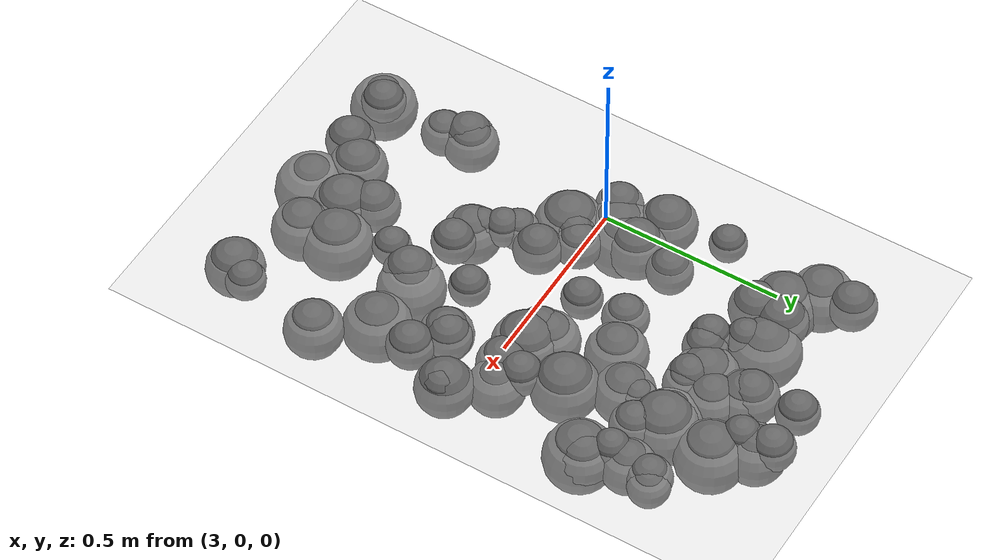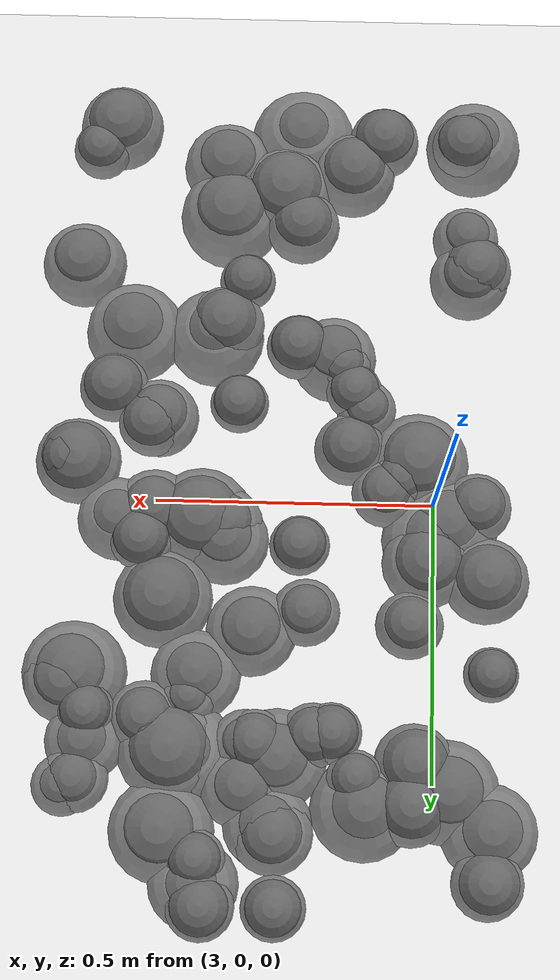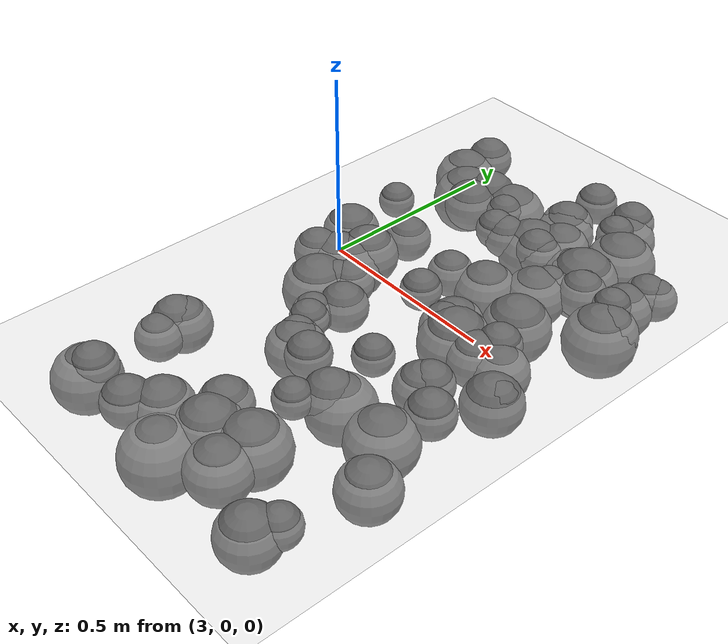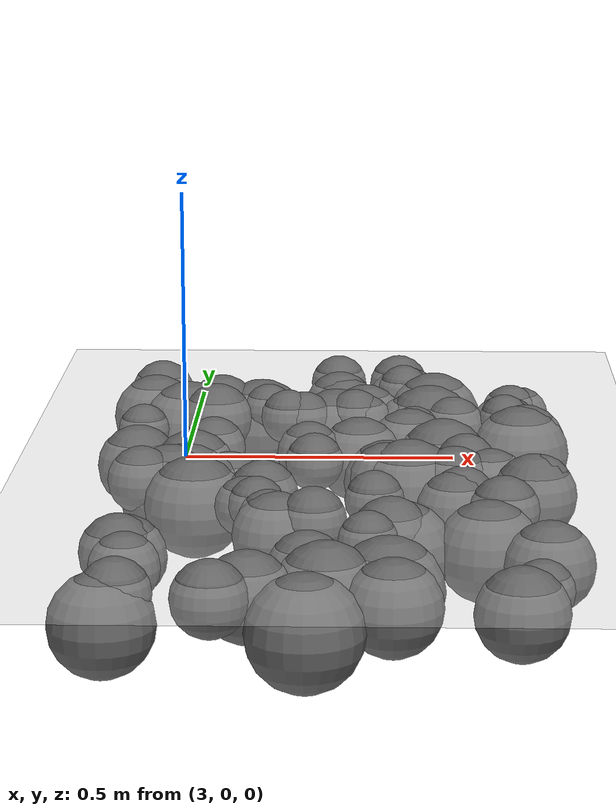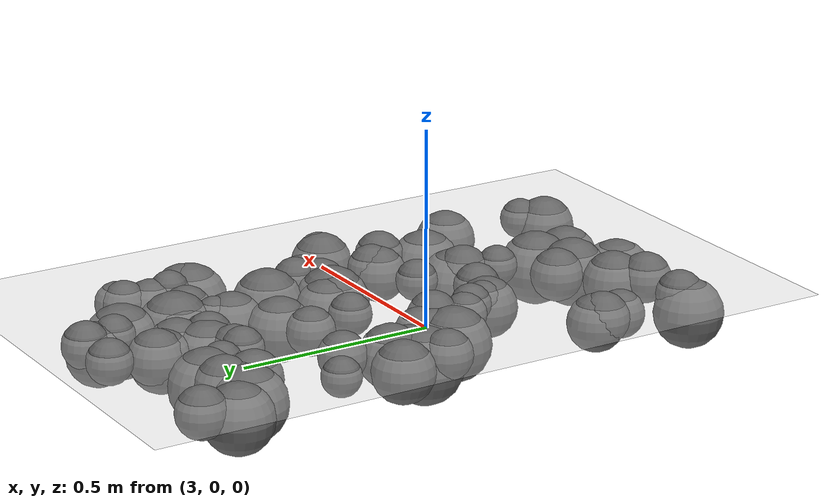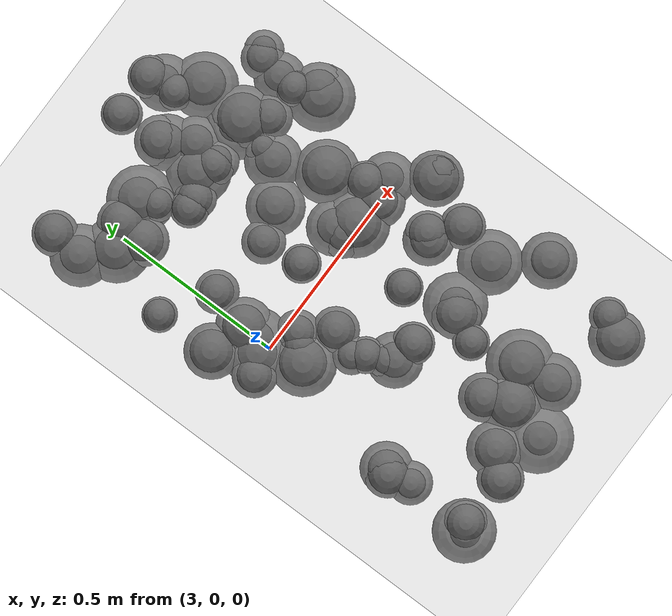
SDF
<sdf version="1.6">
 <world name="high_freq_world">
  <model name="ground_plane">
   <static>true</static>
   <link name="link">
    <collision name="collision">
     <geometry><plane><normal>0 0 1</normal><size>100 100</size></plane></geometry>
     <surface><friction><ode><mu>100.0</mu><mu2>100.0</mu2></ode></friction></surface>
    </collision>
    <visual name="visual">
     <geometry><plane><normal>0 0 1</normal><size>100 100</size></plane></geometry>
     <material><ambient>0.8 0.8 0.8 1</ambient><diffuse>0.8 0.8 0.8 1</diffuse></material>
    </visual>
   </link>
  </model>
  <model name="bump_1">
   <static>true</static>
   <pose>3.433 0.444 -0.080 0 0 0</pose>
   <link name="link">
    <collision name="collision">
     <geometry><sphere><radius>0.091</radius></sphere></geometry>
     <surface><friction><ode><mu>100.0</mu><mu2>100.0</mu2></ode></friction></surface>
    </collision>
    <visual name="visual">
     <geometry><sphere><radius>0.091</radius></sphere></geometry>
     <material><ambient>0.3 0.3 0.3 1</ambient><diffuse>0.4 0.4 0.4 1</diffuse></material>
    </visual>
   </link>
  </model>
  <model name="bump_16">
   <static>true</static>
   <pose>3.419 0.019 -0.067 0 0 0</pose>
   <link name="link">
    <collision name="collision">
     <geometry><sphere><radius>0.096</radius></sphere></geometry>
     <surface><friction><ode><mu>100.0</mu><mu2>100.0</mu2></ode></friction></surface>
    </collision>
    <visual name="visual">
     <geometry><sphere><radius>0.096</radius></sphere></geometry>
     <material><ambient>0.3 0.3 0.3 1</ambient><diffuse>0.4 0.4 0.4 1</diffuse></material>
    </visual>
   </link>
  </model>
  <model name="bump_22">
   <static>true</static>
   <pose>3.116 0.536 -0.079 0 0 0</pose>
   <link name="link">
    <collision name="collision">
     <geometry><sphere><radius>0.096</radius></sphere></geometry>
     <surface><friction><ode><mu>100.0</mu><mu2>100.0</mu2></ode></friction></surface>
    </collision>
    <visual name="visual">
     <geometry><sphere><radius>0.096</radius></sphere></geometry>
     <material><ambient>0.3 0.3 0.3 1</ambient><diffuse>0.4 0.4 0.4 1</diffuse></material>
    </visual>
   </link>
  </model>
  <model name="bump_28">
   <static>true</static>
   <pose>3.248 -0.306 -0.030 0 0 0</pose>
   <link name="link">
    <collision name="collision">
     <geometry><sphere><radius>0.060</radius></sphere></geometry>
     <surface><friction><ode><mu>100.0</mu><mu2>100.0</mu2></ode></friction></surface>
    </collision>
    <visual name="visual">
     <geometry><sphere><radius>0.060</radius></sphere></geometry>
     <material><ambient>0.3 0.3 0.3 1</ambient><diffuse>0.4 0.4 0.4 1</diffuse></material>
    </visual>
   </link>
  </model>
  <model name="bump_36">
   <static>true</static>
   <pose>3.615 0.429 -0.061 0 0 0</pose>
   <link name="link">
    <collision name="collision">
     <geometry><sphere><radius>0.073</radius></sphere></geometry>
     <surface><friction><ode><mu>100.0</mu><mu2>100.0</mu2></ode></friction></surface>
    </collision>
    <visual name="visual">
     <geometry><sphere><radius>0.073</radius></sphere></geometry>
     <material><ambient>0.3 0.3 0.3 1</ambient><diffuse>0.4 0.4 0.4 1</diffuse></material>
    </visual>
   </link>
  </model>
  <model name="bump_37">
   <static>true</static>
   <pose>3.094 -0.721 -0.038 0 0 0</pose>
   <link name="link">
    <collision name="collision">
     <geometry><sphere><radius>0.066</radius></sphere></geometry>
     <surface><friction><ode><mu>100.0</mu><mu2>100.0</mu2></ode></friction></surface>
    </collision>
    <visual name="visual">
     <geometry><sphere><radius>0.066</radius></sphere></geometry>
     <material><ambient>0.3 0.3 0.3 1</ambient><diffuse>0.4 0.4 0.4 1</diffuse></material>
    </visual>
   </link>
  </model>
  <model name="bump_45">
   <static>true</static>
   <pose>2.967 0.505 -0.076 0 0 0</pose>
   <link name="link">
    <collision name="collision">
     <geometry><sphere><radius>0.095</radius></sphere></geometry>
     <surface><friction><ode><mu>100.0</mu><mu2>100.0</mu2></ode></friction></surface>
    </collision>
    <visual name="visual">
     <geometry><sphere><radius>0.095</radius></sphere></geometry>
     <material><ambient>0.3 0.3 0.3 1</ambient><diffuse>0.4 0.4 0.4 1</diffuse></material>
    </visual>
   </link>
  </model>
  <model name="bump_48">
   <static>true</static>
   <pose>3.526 0.065 -0.029 0 0 0</pose>
   <link name="link">
    <collision name="collision">
     <geometry><sphere><radius>0.058</radius></sphere></geometry>
     <surface><friction><ode><mu>100.0</mu><mu2>100.0</mu2></ode></friction></surface>
    </collision>
    <visual name="visual">
     <geometry><sphere><radius>0.058</radius></sphere></geometry>
     <material><ambient>0.3 0.3 0.3 1</ambient><diffuse>0.4 0.4 0.4 1</diffuse></material>
    </visual>
   </link>
  </model>
  <model name="bump_57">
   <static>true</static>
   <pose>3.038 0.211 -0.041 0 0 0</pose>
   <link name="link">
    <collision name="collision">
     <geometry><sphere><radius>0.062</radius></sphere></geometry>
     <surface><friction><ode><mu>100.0</mu><mu2>100.0</mu2></ode></friction></surface>
    </collision>
    <visual name="visual">
     <geometry><sphere><radius>0.062</radius></sphere></geometry>
     <material><ambient>0.3 0.3 0.3 1</ambient><diffuse>0.4 0.4 0.4 1</diffuse></material>
    </visual>
   </link>
  </model>
  <model name="bump_61">
   <static>true</static>
   <pose>3.629 0.498 -0.044 0 0 0</pose>
   <link name="link">
    <collision name="collision">
     <geometry><sphere><radius>0.061</radius></sphere></geometry>
     <surface><friction><ode><mu>100.0</mu><mu2>100.0</mu2></ode></friction></surface>
    </collision>
    <visual name="visual">
     <geometry><sphere><radius>0.061</radius></sphere></geometry>
     <material><ambient>0.3 0.3 0.3 1</ambient><diffuse>0.4 0.4 0.4 1</diffuse></material>
    </visual>
   </link>
  </model>
  <model name="bump_64">
   <static>true</static>
   <pose>3.248 -0.739 -0.089 0 0 0</pose>
   <link name="link">
    <collision name="collision">
     <geometry><sphere><radius>0.100</radius></sphere></geometry>
     <surface><friction><ode><mu>100.0</mu><mu2>100.0</mu2></ode></friction></surface>
    </collision>
    <visual name="visual">
     <geometry><sphere><radius>0.100</radius></sphere></geometry>
     <material><ambient>0.3 0.3 0.3 1</ambient><diffuse>0.4 0.4 0.4 1</diffuse></material>
    </visual>
   </link>
  </model>
  <model name="bump_75">
   <static>true</static>
   <pose>3.485 0.169 -0.061 0 0 0</pose>
   <link name="link">
    <collision name="collision">
     <geometry><sphere><radius>0.091</radius></sphere></geometry>
     <surface><friction><ode><mu>100.0</mu><mu2>100.0</mu2></ode></friction></surface>
    </collision>
    <visual name="visual">
     <geometry><sphere><radius>0.091</radius></sphere></geometry>
     <material><ambient>0.3 0.3 0.3 1</ambient><diffuse>0.4 0.4 0.4 1</diffuse></material>
    </visual>
   </link>
  </model>
  <model name="bump_82">
   <static>true</static>
   <pose>3.311 0.427 -0.035 0 0 0</pose>
   <link name="link">
    <collision name="collision">
     <geometry><sphere><radius>0.059</radius></sphere></geometry>
     <surface><friction><ode><mu>100.0</mu><mu2>100.0</mu2></ode></friction></surface>
    </collision>
    <visual name="visual">
     <geometry><sphere><radius>0.059</radius></sphere></geometry>
     <material><ambient>0.3 0.3 0.3 1</ambient><diffuse>0.4 0.4 0.4 1</diffuse></material>
    </visual>
   </link>
  </model>
  <model name="bump_86">
   <static>true</static>
   <pose>3.588 -0.222 -0.036 0 0 0</pose>
   <link name="link">
    <collision name="collision">
     <geometry><sphere><radius>0.064</radius></sphere></geometry>
     <surface><friction><ode><mu>100.0</mu><mu2>100.0</mu2></ode></friction></surface>
    </collision>
    <visual name="visual">
     <geometry><sphere><radius>0.064</radius></sphere></geometry>
     <material><ambient>0.3 0.3 0.3 1</ambient><diffuse>0.4 0.4 0.4 1</diffuse></material>
    </visual>
   </link>
  </model>
  <model name="bump_92">
   <static>true</static>
   <pose>3.084 -0.033 -0.044 0 0 0</pose>
   <link name="link">
    <collision name="collision">
     <geometry><sphere><radius>0.062</radius></sphere></geometry>
     <surface><friction><ode><mu>100.0</mu><mu2>100.0</mu2></ode></friction></surface>
    </collision>
    <visual name="visual">
     <geometry><sphere><radius>0.062</radius></sphere></geometry>
     <material><ambient>0.3 0.3 0.3 1</ambient><diffuse>0.4 0.4 0.4 1</diffuse></material>
    </visual>
   </link>
  </model>
  <model name="bump_102">
   <static>true</static>
   <pose>3.500 0.400 -0.037 0 0 0</pose>
   <link name="link">
    <collision name="collision">
     <geometry><sphere><radius>0.053</radius></sphere></geometry>
     <surface><friction><ode><mu>100.0</mu><mu2>100.0</mu2></ode></friction></surface>
    </collision>
    <visual name="visual">
     <geometry><sphere><radius>0.053</radius></sphere></geometry>
     <material><ambient>0.3 0.3 0.3 1</ambient><diffuse>0.4 0.4 0.4 1</diffuse></material>
    </visual>
   </link>
  </model>
  <model name="bump_103">
   <static>true</static>
   <pose>3.515 -0.155 -0.036 0 0 0</pose>
   <link name="link">
    <collision name="collision">
     <geometry><sphere><radius>0.062</radius></sphere></geometry>
     <surface><friction><ode><mu>100.0</mu><mu2>100.0</mu2></ode></friction></surface>
    </collision>
    <visual name="visual">
     <geometry><sphere><radius>0.062</radius></sphere></geometry>
     <material><ambient>0.3 0.3 0.3 1</ambient><diffuse>0.4 0.4 0.4 1</diffuse></material>
    </visual>
   </link>
  </model>
  <model name="bump_105">
   <static>true</static>
   <pose>3.400 0.715 -0.033 0 0 0</pose>
   <link name="link">
    <collision name="collision">
     <geometry><sphere><radius>0.061</radius></sphere></geometry>
     <surface><friction><ode><mu>100.0</mu><mu2>100.0</mu2></ode></friction></surface>
    </collision>
    <visual name="visual">
     <geometry><sphere><radius>0.061</radius></sphere></geometry>
     <material><ambient>0.3 0.3 0.3 1</ambient><diffuse>0.4 0.4 0.4 1</diffuse></material>
    </visual>
   </link>
  </model>
  <model name="bump_106">
   <static>true</static>
   <pose>2.917 -0.009 -0.043 0 0 0</pose>
   <link name="link">
    <collision name="collision">
     <geometry><sphere><radius>0.064</radius></sphere></geometry>
     <surface><friction><ode><mu>100.0</mu><mu2>100.0</mu2></ode></friction></surface>
    </collision>
    <visual name="visual">
     <geometry><sphere><radius>0.064</radius></sphere></geometry>
     <material><ambient>0.3 0.3 0.3 1</ambient><diffuse>0.4 0.4 0.4 1</diffuse></material>
    </visual>
   </link>
  </model>
  <model name="bump_118">
   <static>true</static>
   <pose>3.656 -0.469 -0.060 0 0 0</pose>
   <link name="link">
    <collision name="collision">
     <geometry><sphere><radius>0.079</radius></sphere></geometry>
     <surface><friction><ode><mu>100.0</mu><mu2>100.0</mu2></ode></friction></surface>
    </collision>
    <visual name="visual">
     <geometry><sphere><radius>0.079</radius></sphere></geometry>
     <material><ambient>0.3 0.3 0.3 1</ambient><diffuse>0.4 0.4 0.4 1</diffuse></material>
    </visual>
   </link>
  </model>
  <model name="bump_119">
   <static>true</static>
   <pose>3.641 0.306 -0.075 0 0 0</pose>
   <link name="link">
    <collision name="collision">
     <geometry><sphere><radius>0.096</radius></sphere></geometry>
     <surface><friction><ode><mu>100.0</mu><mu2>100.0</mu2></ode></friction></surface>
    </collision>
    <visual name="visual">
     <geometry><sphere><radius>0.096</radius></sphere></geometry>
     <material><ambient>0.3 0.3 0.3 1</ambient><diffuse>0.4 0.4 0.4 1</diffuse></material>
    </visual>
   </link>
  </model>
  <model name="bump_121">
   <static>true</static>
   <pose>3.121 -0.190 -0.040 0 0 0</pose>
   <link name="link">
    <collision name="collision">
     <geometry><sphere><radius>0.055</radius></sphere></geometry>
     <surface><friction><ode><mu>100.0</mu><mu2>100.0</mu2></ode></friction></surface>
    </collision>
    <visual name="visual">
     <geometry><sphere><radius>0.055</radius></sphere></geometry>
     <material><ambient>0.3 0.3 0.3 1</ambient><diffuse>0.4 0.4 0.4 1</diffuse></material>
    </visual>
   </link>
  </model>
  <model name="bump_122">
   <static>true</static>
   <pose>3.612 0.379 -0.024 0 0 0</pose>
   <link name="link">
    <collision name="collision">
     <geometry><sphere><radius>0.051</radius></sphere></geometry>
     <surface><friction><ode><mu>100.0</mu><mu2>100.0</mu2></ode></friction></surface>
    </collision>
    <visual name="visual">
     <geometry><sphere><radius>0.051</radius></sphere></geometry>
     <material><ambient>0.3 0.3 0.3 1</ambient><diffuse>0.4 0.4 0.4 1</diffuse></material>
    </visual>
   </link>
  </model>
  <model name="bump_143">
   <static>true</static>
   <pose>3.650 0.509 -0.046 0 0 0</pose>
   <link name="link">
    <collision name="collision">
     <geometry><sphere><radius>0.056</radius></sphere></geometry>
     <surface><friction><ode><mu>100.0</mu><mu2>100.0</mu2></ode></friction></surface>
    </collision>
    <visual name="visual">
     <geometry><sphere><radius>0.056</radius></sphere></geometry>
     <material><ambient>0.3 0.3 0.3 1</ambient><diffuse>0.4 0.4 0.4 1</diffuse></material>
    </visual>
   </link>
  </model>
  <model name="bump_145">
   <static>true</static>
   <pose>3.328 0.427 -0.046 0 0 0</pose>
   <link name="link">
    <collision name="collision">
     <geometry><sphere><radius>0.060</radius></sphere></geometry>
     <surface><friction><ode><mu>100.0</mu><mu2>100.0</mu2></ode></friction></surface>
    </collision>
    <visual name="visual">
     <geometry><sphere><radius>0.060</radius></sphere></geometry>
     <material><ambient>0.3 0.3 0.3 1</ambient><diffuse>0.4 0.4 0.4 1</diffuse></material>
    </visual>
   </link>
  </model>
  <model name="bump_148">
   <static>true</static>
   <pose>3.405 -0.336 -0.079 0 0 0</pose>
   <link name="link">
    <collision name="collision">
     <geometry><sphere><radius>0.091</radius></sphere></geometry>
     <surface><friction><ode><mu>100.0</mu><mu2>100.0</mu2></ode></friction></surface>
    </collision>
    <visual name="visual">
     <geometry><sphere><radius>0.091</radius></sphere></geometry>
     <material><ambient>0.3 0.3 0.3 1</ambient><diffuse>0.4 0.4 0.4 1</diffuse></material>
    </visual>
   </link>
  </model>
  <model name="bump_151">
   <static>true</static>
   <pose>3.382 -0.576 -0.073 0 0 0</pose>
   <link name="link">
    <collision name="collision">
     <geometry><sphere><radius>0.096</radius></sphere></geometry>
     <surface><friction><ode><mu>100.0</mu><mu2>100.0</mu2></ode></friction></surface>
    </collision>
    <visual name="visual">
     <geometry><sphere><radius>0.096</radius></sphere></geometry>
     <material><ambient>0.3 0.3 0.3 1</ambient><diffuse>0.4 0.4 0.4 1</diffuse></material>
    </visual>
   </link>
  </model>
  <model name="bump_152">
   <static>true</static>
   <pose>2.937 -0.530 -0.048 0 0 0</pose>
   <link name="link">
    <collision name="collision">
     <geometry><sphere><radius>0.062</radius></sphere></geometry>
     <surface><friction><ode><mu>100.0</mu><mu2>100.0</mu2></ode></friction></surface>
    </collision>
    <visual name="visual">
     <geometry><sphere><radius>0.062</radius></sphere></geometry>
     <material><ambient>0.3 0.3 0.3 1</ambient><diffuse>0.4 0.4 0.4 1</diffuse></material>
    </visual>
   </link>
  </model>
  <model name="bump_164">
   <static>true</static>
   <pose>3.278 -0.620 -0.061 0 0 0</pose>
   <link name="link">
    <collision name="collision">
     <geometry><sphere><radius>0.089</radius></sphere></geometry>
     <surface><friction><ode><mu>100.0</mu><mu2>100.0</mu2></ode></friction></surface>
    </collision>
    <visual name="visual">
     <geometry><sphere><radius>0.089</radius></sphere></geometry>
     <material><ambient>0.3 0.3 0.3 1</ambient><diffuse>0.4 0.4 0.4 1</diffuse></material>
    </visual>
   </link>
  </model>
  <model name="bump_170">
   <static>true</static>
   <pose>3.376 0.030 -0.051 0 0 0</pose>
   <link name="link">
    <collision name="collision">
     <geometry><sphere><radius>0.070</radius></sphere></geometry>
     <surface><friction><ode><mu>100.0</mu><mu2>100.0</mu2></ode></friction></surface>
    </collision>
    <visual name="visual">
     <geometry><sphere><radius>0.070</radius></sphere></geometry>
     <material><ambient>0.3 0.3 0.3 1</ambient><diffuse>0.4 0.4 0.4 1</diffuse></material>
    </visual>
   </link>
  </model>
  <model name="bump_179">
   <static>true</static>
   <pose>3.385 -0.352 -0.046 0 0 0</pose>
   <link name="link">
    <collision name="collision">
     <geometry><sphere><radius>0.072</radius></sphere></geometry>
     <surface><friction><ode><mu>100.0</mu><mu2>100.0</mu2></ode></friction></surface>
    </collision>
    <visual name="visual">
     <geometry><sphere><radius>0.072</radius></sphere></geometry>
     <material><ambient>0.3 0.3 0.3 1</ambient><diffuse>0.4 0.4 0.4 1</diffuse></material>
    </visual>
   </link>
  </model>
  <model name="bump_183">
   <static>true</static>
   <pose>3.414 0.676 -0.069 0 0 0</pose>
   <link name="link">
    <collision name="collision">
     <geometry><sphere><radius>0.081</radius></sphere></geometry>
     <surface><friction><ode><mu>100.0</mu><mu2>100.0</mu2></ode></friction></surface>
    </collision>
    <visual name="visual">
     <geometry><sphere><radius>0.081</radius></sphere></geometry>
     <material><ambient>0.3 0.3 0.3 1</ambient><diffuse>0.4 0.4 0.4 1</diffuse></material>
    </visual>
   </link>
  </model>
  <model name="bump_186">
   <static>true</static>
   <pose>3.000 0.047 -0.076 0 0 0</pose>
   <link name="link">
    <collision name="collision">
     <geometry><sphere><radius>0.089</radius></sphere></geometry>
     <surface><friction><ode><mu>100.0</mu><mu2>100.0</mu2></ode></friction></surface>
    </collision>
    <visual name="visual">
     <geometry><sphere><radius>0.089</radius></sphere></geometry>
     <material><ambient>0.3 0.3 0.3 1</ambient><diffuse>0.4 0.4 0.4 1</diffuse></material>
    </visual>
   </link>
  </model>
  <model name="bump_204">
   <static>true</static>
   <pose>3.596 -0.746 -0.052 0 0 0</pose>
   <link name="link">
    <collision name="collision">
     <geometry><sphere><radius>0.079</radius></sphere></geometry>
     <surface><friction><ode><mu>100.0</mu><mu2>100.0</mu2></ode></friction></surface>
    </collision>
    <visual name="visual">
     <geometry><sphere><radius>0.079</radius></sphere></geometry>
     <material><ambient>0.3 0.3 0.3 1</ambient><diffuse>0.4 0.4 0.4 1</diffuse></material>
    </visual>
   </link>
  </model>
  <model name="bump_205">
   <static>true</static>
   <pose>3.007 0.094 -0.057 0 0 0</pose>
   <link name="link">
    <collision name="collision">
     <geometry><sphere><radius>0.082</radius></sphere></geometry>
     <surface><friction><ode><mu>100.0</mu><mu2>100.0</mu2></ode></friction></surface>
    </collision>
    <visual name="visual">
     <geometry><sphere><radius>0.082</radius></sphere></geometry>
     <material><ambient>0.3 0.3 0.3 1</ambient><diffuse>0.4 0.4 0.4 1</diffuse></material>
    </visual>
   </link>
  </model>
  <model name="bump_213">
   <static>true</static>
   <pose>3.239 0.071 -0.028 0 0 0</pose>
   <link name="link">
    <collision name="collision">
     <geometry><sphere><radius>0.055</radius></sphere></geometry>
     <surface><friction><ode><mu>100.0</mu><mu2>100.0</mu2></ode></friction></surface>
    </collision>
    <visual name="visual">
     <geometry><sphere><radius>0.055</radius></sphere></geometry>
     <material><ambient>0.3 0.3 0.3 1</ambient><diffuse>0.4 0.4 0.4 1</diffuse></material>
    </visual>
   </link>
  </model>
  <model name="bump_218">
   <static>true</static>
   <pose>2.920 -0.465 -0.042 0 0 0</pose>
   <link name="link">
    <collision name="collision">
     <geometry><sphere><radius>0.068</radius></sphere></geometry>
     <surface><friction><ode><mu>100.0</mu><mu2>100.0</mu2></ode></friction></surface>
    </collision>
    <visual name="visual">
     <geometry><sphere><radius>0.068</radius></sphere></geometry>
     <material><ambient>0.3 0.3 0.3 1</ambient><diffuse>0.4 0.4 0.4 1</diffuse></material>
    </visual>
   </link>
  </model>
  <model name="bump_219">
   <static>true</static>
   <pose>3.034 0.534 -0.045 0 0 0</pose>
   <link name="link">
    <collision name="collision">
     <geometry><sphere><radius>0.072</radius></sphere></geometry>
     <surface><friction><ode><mu>100.0</mu><mu2>100.0</mu2></ode></friction></surface>
    </collision>
    <visual name="visual">
     <geometry><sphere><radius>0.072</radius></sphere></geometry>
     <material><ambient>0.3 0.3 0.3 1</ambient><diffuse>0.4 0.4 0.4 1</diffuse></material>
    </visual>
   </link>
  </model>
  <model name="bump_223">
   <static>true</static>
   <pose>2.899 0.125 -0.053 0 0 0</pose>
   <link name="link">
    <collision name="collision">
     <geometry><sphere><radius>0.079</radius></sphere></geometry>
     <surface><friction><ode><mu>100.0</mu><mu2>100.0</mu2></ode></friction></surface>
    </collision>
    <visual name="visual">
     <geometry><sphere><radius>0.079</radius></sphere></geometry>
     <material><ambient>0.3 0.3 0.3 1</ambient><diffuse>0.4 0.4 0.4 1</diffuse></material>
    </visual>
   </link>
  </model>
  <model name="bump_224">
   <static>true</static>
   <pose>3.167 -0.274 -0.039 0 0 0</pose>
   <link name="link">
    <collision name="collision">
     <geometry><sphere><radius>0.054</radius></sphere></geometry>
     <surface><friction><ode><mu>100.0</mu><mu2>100.0</mu2></ode></friction></surface>
    </collision>
    <visual name="visual">
     <geometry><sphere><radius>0.054</radius></sphere></geometry>
     <material><ambient>0.3 0.3 0.3 1</ambient><diffuse>0.4 0.4 0.4 1</diffuse></material>
    </visual>
   </link>
  </model>
  <model name="bump_230">
   <static>true</static>
   <pose>3.323 0.224 -0.065 0 0 0</pose>
   <link name="link">
    <collision name="collision">
     <geometry><sphere><radius>0.083</radius></sphere></geometry>
     <surface><friction><ode><mu>100.0</mu><mu2>100.0</mu2></ode></friction></surface>
    </collision>
    <visual name="visual">
     <geometry><sphere><radius>0.083</radius></sphere></geometry>
     <material><ambient>0.3 0.3 0.3 1</ambient><diffuse>0.4 0.4 0.4 1</diffuse></material>
    </visual>
   </link>
  </model>
  <model name="bump_236">
   <static>true</static>
   <pose>3.272 0.715 -0.031 0 0 0</pose>
   <link name="link">
    <collision name="collision">
     <geometry><sphere><radius>0.058</radius></sphere></geometry>
     <surface><friction><ode><mu>100.0</mu><mu2>100.0</mu2></ode></friction></surface>
    </collision>
    <visual name="visual">
     <geometry><sphere><radius>0.058</radius></sphere></geometry>
     <material><ambient>0.3 0.3 0.3 1</ambient><diffuse>0.4 0.4 0.4 1</diffuse></material>
    </visual>
   </link>
  </model>
  <model name="bump_252">
   <static>true</static>
   <pose>2.920 -0.729 -0.080 0 0 0</pose>
   <link name="link">
    <collision name="collision">
     <geometry><sphere><radius>0.090</radius></sphere></geometry>
     <surface><friction><ode><mu>100.0</mu><mu2>100.0</mu2></ode></friction></surface>
    </collision>
    <visual name="visual">
     <geometry><sphere><radius>0.090</radius></sphere></geometry>
     <material><ambient>0.3 0.3 0.3 1</ambient><diffuse>0.4 0.4 0.4 1</diffuse></material>
    </visual>
   </link>
  </model>
  <model name="bump_261">
   <static>true</static>
   <pose>3.376 0.058 -0.065 0 0 0</pose>
   <link name="link">
    <collision name="collision">
     <geometry><sphere><radius>0.081</radius></sphere></geometry>
     <surface><friction><ode><mu>100.0</mu><mu2>100.0</mu2></ode></friction></surface>
    </collision>
    <visual name="visual">
     <geometry><sphere><radius>0.081</radius></sphere></geometry>
     <material><ambient>0.3 0.3 0.3 1</ambient><diffuse>0.4 0.4 0.4 1</diffuse></material>
    </visual>
   </link>
  </model>
  <model name="bump_268">
   <static>true</static>
   <pose>3.225 0.191 -0.044 0 0 0</pose>
   <link name="link">
    <collision name="collision">
     <geometry><sphere><radius>0.062</radius></sphere></geometry>
     <surface><friction><ode><mu>100.0</mu><mu2>100.0</mu2></ode></friction></surface>
    </collision>
    <visual name="visual">
     <geometry><sphere><radius>0.062</radius></sphere></geometry>
     <material><ambient>0.3 0.3 0.3 1</ambient><diffuse>0.4 0.4 0.4 1</diffuse></material>
    </visual>
   </link>
  </model>
  <model name="bump_273">
   <static>true</static>
   <pose>3.505 0.004 -0.054 0 0 0</pose>
   <link name="link">
    <collision name="collision">
     <geometry><sphere><radius>0.074</radius></sphere></geometry>
     <surface><friction><ode><mu>100.0</mu><mu2>100.0</mu2></ode></friction></surface>
    </collision>
    <visual name="visual">
     <geometry><sphere><radius>0.074</radius></sphere></geometry>
     <material><ambient>0.3 0.3 0.3 1</ambient><diffuse>0.4 0.4 0.4 1</diffuse></material>
    </visual>
   </link>
  </model>
  <model name="bump_277">
   <static>true</static>
   <pose>3.421 0.305 -0.067 0 0 0</pose>
   <link name="link">
    <collision name="collision">
     <geometry><sphere><radius>0.082</radius></sphere></geometry>
     <surface><friction><ode><mu>100.0</mu><mu2>100.0</mu2></ode></friction></surface>
    </collision>
    <visual name="visual">
     <geometry><sphere><radius>0.082</radius></sphere></geometry>
     <material><ambient>0.3 0.3 0.3 1</ambient><diffuse>0.4 0.4 0.4 1</diffuse></material>
    </visual>
   </link>
  </model>
  <model name="bump_282">
   <static>true</static>
   <pose>3.556 -0.342 -0.075 0 0 0</pose>
   <link name="link">
    <collision name="collision">
     <geometry><sphere><radius>0.092</radius></sphere></geometry>
     <surface><friction><ode><mu>100.0</mu><mu2>100.0</mu2></ode></friction></surface>
    </collision>
    <visual name="visual">
     <geometry><sphere><radius>0.092</radius></sphere></geometry>
     <material><ambient>0.3 0.3 0.3 1</ambient><diffuse>0.4 0.4 0.4 1</diffuse></material>
    </visual>
   </link>
  </model>
  <model name="bump_296">
   <static>true</static>
   <pose>3.182 -0.293 -0.063 0 0 0</pose>
   <link name="link">
    <collision name="collision">
     <geometry><sphere><radius>0.079</radius></sphere></geometry>
     <surface><friction><ode><mu>100.0</mu><mu2>100.0</mu2></ode></friction></surface>
    </collision>
    <visual name="visual">
     <geometry><sphere><radius>0.079</radius></sphere></geometry>
     <material><ambient>0.3 0.3 0.3 1</ambient><diffuse>0.4 0.4 0.4 1</diffuse></material>
    </visual>
   </link>
  </model>
  <model name="bump_301">
   <static>true</static>
   <pose>3.208 0.413 -0.037 0 0 0</pose>
   <link name="link">
    <collision name="collision">
     <geometry><sphere><radius>0.059</radius></sphere></geometry>
     <surface><friction><ode><mu>100.0</mu><mu2>100.0</mu2></ode></friction></surface>
    </collision>
    <visual name="visual">
     <geometry><sphere><radius>0.059</radius></sphere></geometry>
     <material><ambient>0.3 0.3 0.3 1</ambient><diffuse>0.4 0.4 0.4 1</diffuse></material>
    </visual>
   </link>
  </model>
  <model name="bump_303">
   <static>true</static>
   <pose>3.502 -0.169 -0.051 0 0 0</pose>
   <link name="link">
    <collision name="collision">
     <geometry><sphere><radius>0.072</radius></sphere></geometry>
     <surface><friction><ode><mu>100.0</mu><mu2>100.0</mu2></ode></friction></surface>
    </collision>
    <visual name="visual">
     <geometry><sphere><radius>0.072</radius></sphere></geometry>
     <material><ambient>0.3 0.3 0.3 1</ambient><diffuse>0.4 0.4 0.4 1</diffuse></material>
    </visual>
   </link>
  </model>
  <model name="bump_308">
   <static>true</static>
   <pose>3.390 -0.675 -0.067 0 0 0</pose>
   <link name="link">
    <collision name="collision">
     <geometry><sphere><radius>0.084</radius></sphere></geometry>
     <surface><friction><ode><mu>100.0</mu><mu2>100.0</mu2></ode></friction></surface>
    </collision>
    <visual name="visual">
     <geometry><sphere><radius>0.084</radius></sphere></geometry>
     <material><ambient>0.3 0.3 0.3 1</ambient><diffuse>0.4 0.4 0.4 1</diffuse></material>
    </visual>
   </link>
  </model>
  <model name="bump_310">
   <static>true</static>
   <pose>3.144 -0.221 -0.028 0 0 0</pose>
   <link name="link">
    <collision name="collision">
     <geometry><sphere><radius>0.052</radius></sphere></geometry>
     <surface><friction><ode><mu>100.0</mu><mu2>100.0</mu2></ode></friction></surface>
    </collision>
    <visual name="visual">
     <geometry><sphere><radius>0.052</radius></sphere></geometry>
     <material><ambient>0.3 0.3 0.3 1</ambient><diffuse>0.4 0.4 0.4 1</diffuse></material>
    </visual>
   </link>
  </model>
  <model name="bump_311">
   <static>true</static>
   <pose>2.899 0.665 -0.039 0 0 0</pose>
   <link name="link">
    <collision name="collision">
     <geometry><sphere><radius>0.065</radius></sphere></geometry>
     <surface><friction><ode><mu>100.0</mu><mu2>100.0</mu2></ode></friction></surface>
    </collision>
    <visual name="visual">
     <geometry><sphere><radius>0.065</radius></sphere></geometry>
     <material><ambient>0.3 0.3 0.3 1</ambient><diffuse>0.4 0.4 0.4 1</diffuse></material>
    </visual>
   </link>
  </model>
  <model name="bump_333">
   <static>true</static>
   <pose>2.941 -0.715 -0.032 0 0 0</pose>
   <link name="link">
    <collision name="collision">
     <geometry><sphere><radius>0.061</radius></sphere></geometry>
     <surface><friction><ode><mu>100.0</mu><mu2>100.0</mu2></ode></friction></surface>
    </collision>
    <visual name="visual">
     <geometry><sphere><radius>0.061</radius></sphere></geometry>
     <material><ambient>0.3 0.3 0.3 1</ambient><diffuse>0.4 0.4 0.4 1</diffuse></material>
    </visual>
   </link>
  </model>
  <model name="bump_338">
   <static>true</static>
   <pose>3.431 0.347 -0.041 0 0 0</pose>
   <link name="link">
    <collision name="collision">
     <geometry><sphere><radius>0.051</radius></sphere></geometry>
     <surface><friction><ode><mu>100.0</mu><mu2>100.0</mu2></ode></friction></surface>
    </collision>
    <visual name="visual">
     <geometry><sphere><radius>0.051</radius></sphere></geometry>
     <material><ambient>0.3 0.3 0.3 1</ambient><diffuse>0.4 0.4 0.4 1</diffuse></material>
    </visual>
   </link>
  </model>
  <model name="bump_339">
   <static>true</static>
   <pose>3.003 0.501 -0.045 0 0 0</pose>
   <link name="link">
    <collision name="collision">
     <geometry><sphere><radius>0.059</radius></sphere></geometry>
     <surface><friction><ode><mu>100.0</mu><mu2>100.0</mu2></ode></friction></surface>
    </collision>
    <visual name="visual">
     <geometry><sphere><radius>0.059</radius></sphere></geometry>
     <material><ambient>0.3 0.3 0.3 1</ambient><diffuse>0.4 0.4 0.4 1</diffuse></material>
    </visual>
   </link>
  </model>
  <model name="bump_350">
   <static>true</static>
   <pose>3.176 0.409 -0.028 0 0 0</pose>
   <link name="link">
    <collision name="collision">
     <geometry><sphere><radius>0.055</radius></sphere></geometry>
     <surface><friction><ode><mu>100.0</mu><mu2>100.0</mu2></ode></friction></surface>
    </collision>
    <visual name="visual">
     <geometry><sphere><radius>0.055</radius></sphere></geometry>
     <material><ambient>0.3 0.3 0.3 1</ambient><diffuse>0.4 0.4 0.4 1</diffuse></material>
    </visual>
   </link>
  </model>
  <model name="bump_353">
   <static>true</static>
   <pose>3.652 0.321 -0.059 0 0 0</pose>
   <link name="link">
    <collision name="collision">
     <geometry><sphere><radius>0.079</radius></sphere></geometry>
     <surface><friction><ode><mu>100.0</mu><mu2>100.0</mu2></ode></friction></surface>
    </collision>
    <visual name="visual">
     <geometry><sphere><radius>0.079</radius></sphere></geometry>
     <material><ambient>0.3 0.3 0.3 1</ambient><diffuse>0.4 0.4 0.4 1</diffuse></material>
    </visual>
   </link>
  </model>
  <model name="bump_356">
   <static>true</static>
   <pose>2.893 0.299 -0.026 0 0 0</pose>
   <link name="link">
    <collision name="collision">
     <geometry><sphere><radius>0.050</radius></sphere></geometry>
     <surface><friction><ode><mu>100.0</mu><mu2>100.0</mu2></ode></friction></surface>
    </collision>
    <visual name="visual">
     <geometry><sphere><radius>0.050</radius></sphere></geometry>
     <material><ambient>0.3 0.3 0.3 1</ambient><diffuse>0.4 0.4 0.4 1</diffuse></material>
    </visual>
   </link>
  </model>
  <model name="bump_359">
   <static>true</static>
   <pose>3.346 -0.431 -0.028 0 0 0</pose>
   <link name="link">
    <collision name="collision">
     <geometry><sphere><radius>0.052</radius></sphere></geometry>
     <surface><friction><ode><mu>100.0</mu><mu2>100.0</mu2></ode></friction></surface>
    </collision>
    <visual name="visual">
     <geometry><sphere><radius>0.052</radius></sphere></geometry>
     <material><ambient>0.3 0.3 0.3 1</ambient><diffuse>0.4 0.4 0.4 1</diffuse></material>
    </visual>
   </link>
  </model>
  <model name="bump_368">
   <static>true</static>
   <pose>2.930 -0.452 -0.054 0 0 0</pose>
   <link name="link">
    <collision name="collision">
     <geometry><sphere><radius>0.074</radius></sphere></geometry>
     <surface><friction><ode><mu>100.0</mu><mu2>100.0</mu2></ode></friction></surface>
    </collision>
    <visual name="visual">
     <geometry><sphere><radius>0.074</radius></sphere></geometry>
     <material><ambient>0.3 0.3 0.3 1</ambient><diffuse>0.4 0.4 0.4 1</diffuse></material>
    </visual>
   </link>
  </model>
  <model name="bump_372">
   <static>true</static>
   <pose>3.151 -0.660 -0.055 0 0 0</pose>
   <link name="link">
    <collision name="collision">
     <geometry><sphere><radius>0.079</radius></sphere></geometry>
     <surface><friction><ode><mu>100.0</mu><mu2>100.0</mu2></ode></friction></surface>
    </collision>
    <visual name="visual">
     <geometry><sphere><radius>0.079</radius></sphere></geometry>
     <material><ambient>0.3 0.3 0.3 1</ambient><diffuse>0.4 0.4 0.4 1</diffuse></material>
    </visual>
   </link>
  </model>
  <model name="bump_380">
   <static>true</static>
   <pose>2.971 0.021 -0.083 0 0 0</pose>
   <link name="link">
    <collision name="collision">
     <geometry><sphere><radius>0.098</radius></sphere></geometry>
     <surface><friction><ode><mu>100.0</mu><mu2>100.0</mu2></ode></friction></surface>
    </collision>
    <visual name="visual">
     <geometry><sphere><radius>0.098</radius></sphere></geometry>
     <material><ambient>0.3 0.3 0.3 1</ambient><diffuse>0.4 0.4 0.4 1</diffuse></material>
    </visual>
   </link>
  </model>
  <model name="bump_386">
   <static>true</static>
   <pose>3.571 0.021 -0.066 0 0 0</pose>
   <link name="link">
    <collision name="collision">
     <geometry><sphere><radius>0.077</radius></sphere></geometry>
     <surface><friction><ode><mu>100.0</mu><mu2>100.0</mu2></ode></friction></surface>
    </collision>
    <visual name="visual">
     <geometry><sphere><radius>0.077</radius></sphere></geometry>
     <material><ambient>0.3 0.3 0.3 1</ambient><diffuse>0.4 0.4 0.4 1</diffuse></material>
    </visual>
   </link>
  </model>
  <model name="bump_390">
   <static>true</static>
   <pose>3.474 0.583 -0.074 0 0 0</pose>
   <link name="link">
    <collision name="collision">
     <geometry><sphere><radius>0.095</radius></sphere></geometry>
     <surface><friction><ode><mu>100.0</mu><mu2>100.0</mu2></ode></friction></surface>
    </collision>
    <visual name="visual">
     <geometry><sphere><radius>0.095</radius></sphere></geometry>
     <material><ambient>0.3 0.3 0.3 1</ambient><diffuse>0.4 0.4 0.4 1</diffuse></material>
    </visual>
   </link>
  </model>
  <model name="bump_397">
   <static>true</static>
   <pose>3.630 -0.691 -0.032 0 0 0</pose>
   <link name="link">
    <collision name="collision">
     <geometry><sphere><radius>0.054</radius></sphere></geometry>
     <surface><friction><ode><mu>100.0</mu><mu2>100.0</mu2></ode></friction></surface>
    </collision>
    <visual name="visual">
     <geometry><sphere><radius>0.054</radius></sphere></geometry>
     <material><ambient>0.3 0.3 0.3 1</ambient><diffuse>0.4 0.4 0.4 1</diffuse></material>
    </visual>
   </link>
  </model>
  <model name="bump_402">
   <static>true</static>
   <pose>3.133 0.487 -0.031 0 0 0</pose>
   <link name="link">
    <collision name="collision">
     <geometry><sphere><radius>0.051</radius></sphere></geometry>
     <surface><friction><ode><mu>100.0</mu><mu2>100.0</mu2></ode></friction></surface>
    </collision>
    <visual name="visual">
     <geometry><sphere><radius>0.051</radius></sphere></geometry>
     <material><ambient>0.3 0.3 0.3 1</ambient><diffuse>0.4 0.4 0.4 1</diffuse></material>
    </visual>
   </link>
  </model>
  <model name="bump_403">
   <static>true</static>
   <pose>3.277 0.587 -0.051 0 0 0</pose>
   <link name="link">
    <collision name="collision">
     <geometry><sphere><radius>0.073</radius></sphere></geometry>
     <surface><friction><ode><mu>100.0</mu><mu2>100.0</mu2></ode></friction></surface>
    </collision>
    <visual name="visual">
     <geometry><sphere><radius>0.073</radius></sphere></geometry>
     <material><ambient>0.3 0.3 0.3 1</ambient><diffuse>0.4 0.4 0.4 1</diffuse></material>
    </visual>
   </link>
  </model>
  <model name="bump_406">
   <static>true</static>
   <pose>3.509 0.385 -0.045 0 0 0</pose>
   <link name="link">
    <collision name="collision">
     <geometry><sphere><radius>0.065</radius></sphere></geometry>
     <surface><friction><ode><mu>100.0</mu><mu2>100.0</mu2></ode></friction></surface>
    </collision>
    <visual name="visual">
     <geometry><sphere><radius>0.065</radius></sphere></geometry>
     <material><ambient>0.3 0.3 0.3 1</ambient><diffuse>0.4 0.4 0.4 1</diffuse></material>
    </visual>
   </link>
  </model>
  <model name="bump_420">
   <static>true</static>
   <pose>3.057 -0.059 -0.038 0 0 0</pose>
   <link name="link">
    <collision name="collision">
     <geometry><sphere><radius>0.055</radius></sphere></geometry>
     <surface><friction><ode><mu>100.0</mu><mu2>100.0</mu2></ode></friction></surface>
    </collision>
    <visual name="visual">
     <geometry><sphere><radius>0.055</radius></sphere></geometry>
     <material><ambient>0.3 0.3 0.3 1</ambient><diffuse>0.4 0.4 0.4 1</diffuse></material>
    </visual>
   </link>
  </model>
  <model name="bump_424">
   <static>true</static>
   <pose>3.245 -0.549 -0.045 0 0 0</pose>
   <link name="link">
    <collision name="collision">
     <geometry><sphere><radius>0.069</radius></sphere></geometry>
     <surface><friction><ode><mu>100.0</mu><mu2>100.0</mu2></ode></friction></surface>
    </collision>
    <visual name="visual">
     <geometry><sphere><radius>0.069</radius></sphere></geometry>
     <material><ambient>0.3 0.3 0.3 1</ambient><diffuse>0.4 0.4 0.4 1</diffuse></material>
    </visual>
   </link>
  </model>
  <model name="bump_426">
   <static>true</static>
   <pose>3.286 0.570 -0.065 0 0 0</pose>
   <link name="link">
    <collision name="collision">
     <geometry><sphere><radius>0.080</radius></sphere></geometry>
     <surface><friction><ode><mu>100.0</mu><mu2>100.0</mu2></ode></friction></surface>
    </collision>
    <visual name="visual">
     <geometry><sphere><radius>0.080</radius></sphere></geometry>
     <material><ambient>0.3 0.3 0.3 1</ambient><diffuse>0.4 0.4 0.4 1</diffuse></material>
    </visual>
   </link>
  </model>
  <model name="bump_430">
   <static>true</static>
   <pose>3.355 -0.193 -0.026 0 0 0</pose>
   <link name="link">
    <collision name="collision">
     <geometry><sphere><radius>0.054</radius></sphere></geometry>
     <surface><friction><ode><mu>100.0</mu><mu2>100.0</mu2></ode></friction></surface>
    </collision>
    <visual name="visual">
     <geometry><sphere><radius>0.054</radius></sphere></geometry>
     <material><ambient>0.3 0.3 0.3 1</ambient><diffuse>0.4 0.4 0.4 1</diffuse></material>
    </visual>
   </link>
  </model>
  <model name="bump_434">
   <static>true</static>
   <pose>3.410 0.634 -0.027 0 0 0</pose>
   <link name="link">
    <collision name="collision">
     <geometry><sphere><radius>0.053</radius></sphere></geometry>
     <surface><friction><ode><mu>100.0</mu><mu2>100.0</mu2></ode></friction></surface>
    </collision>
    <visual name="visual">
     <geometry><sphere><radius>0.053</radius></sphere></geometry>
     <material><ambient>0.3 0.3 0.3 1</ambient><diffuse>0.4 0.4 0.4 1</diffuse></material>
    </visual>
   </link>
  </model>
  <model name="bump_440">
   <static>true</static>
   <pose>3.649 -0.083 -0.049 0 0 0</pose>
   <link name="link">
    <collision name="collision">
     <geometry><sphere><radius>0.079</radius></sphere></geometry>
     <surface><friction><ode><mu>100.0</mu><mu2>100.0</mu2></ode></friction></surface>
    </collision>
    <visual name="visual">
     <geometry><sphere><radius>0.079</radius></sphere></geometry>
     <material><ambient>0.3 0.3 0.3 1</ambient><diffuse>0.4 0.4 0.4 1</diffuse></material>
    </visual>
   </link>
  </model>
  <model name="bump_452">
   <static>true</static>
   <pose>3.150 -0.114 -0.042 0 0 0</pose>
   <link name="link">
    <collision name="collision">
     <geometry><sphere><radius>0.066</radius></sphere></geometry>
     <surface><friction><ode><mu>100.0</mu><mu2>100.0</mu2></ode></friction></surface>
    </collision>
    <visual name="visual">
     <geometry><sphere><radius>0.066</radius></sphere></geometry>
     <material><ambient>0.3 0.3 0.3 1</ambient><diffuse>0.4 0.4 0.4 1</diffuse></material>
    </visual>
   </link>
  </model>
  <model name="bump_453">
   <static>true</static>
   <pose>3.272 0.452 -0.073 0 0 0</pose>
   <link name="link">
    <collision name="collision">
     <geometry><sphere><radius>0.091</radius></sphere></geometry>
     <surface><friction><ode><mu>100.0</mu><mu2>100.0</mu2></ode></friction></surface>
    </collision>
    <visual name="visual">
     <geometry><sphere><radius>0.091</radius></sphere></geometry>
     <material><ambient>0.3 0.3 0.3 1</ambient><diffuse>0.4 0.4 0.4 1</diffuse></material>
    </visual>
   </link>
  </model>
  <model name="bump_454">
   <static>true</static>
   <pose>3.024 -0.095 -0.069 0 0 0</pose>
   <link name="link">
    <collision name="collision">
     <geometry><sphere><radius>0.095</radius></sphere></geometry>
     <surface><friction><ode><mu>100.0</mu><mu2>100.0</mu2></ode></friction></surface>
    </collision>
    <visual name="visual">
     <geometry><sphere><radius>0.095</radius></sphere></geometry>
     <material><ambient>0.3 0.3 0.3 1</ambient><diffuse>0.4 0.4 0.4 1</diffuse></material>
    </visual>
   </link>
  </model>
  <model name="bump_471">
   <static>true</static>
   <pose>3.462 0.441 -0.068 0 0 0</pose>
   <link name="link">
    <collision name="collision">
     <geometry><sphere><radius>0.097</radius></sphere></geometry>
     <surface><friction><ode><mu>100.0</mu><mu2>100.0</mu2></ode></friction></surface>
    </collision>
    <visual name="visual">
     <geometry><sphere><radius>0.097</radius></sphere></geometry>
     <material><ambient>0.3 0.3 0.3 1</ambient><diffuse>0.4 0.4 0.4 1</diffuse></material>
    </visual>
   </link>
  </model>
  <model name="bump_474">
   <static>true</static>
   <pose>3.660 -0.082 -0.030 0 0 0</pose>
   <link name="link">
    <collision name="collision">
     <geometry><sphere><radius>0.059</radius></sphere></geometry>
     <surface><friction><ode><mu>100.0</mu><mu2>100.0</mu2></ode></friction></surface>
    </collision>
    <visual name="visual">
     <geometry><sphere><radius>0.059</radius></sphere></geometry>
     <material><ambient>0.3 0.3 0.3 1</ambient><diffuse>0.4 0.4 0.4 1</diffuse></material>
    </visual>
   </link>
  </model>
  <model name="bump_476">
   <static>true</static>
   <pose>2.893 0.574 -0.072 0 0 0</pose>
   <link name="link">
    <collision name="collision">
     <geometry><sphere><radius>0.088</radius></sphere></geometry>
     <surface><friction><ode><mu>100.0</mu><mu2>100.0</mu2></ode></friction></surface>
    </collision>
    <visual name="visual">
     <geometry><sphere><radius>0.088</radius></sphere></geometry>
     <material><ambient>0.3 0.3 0.3 1</ambient><diffuse>0.4 0.4 0.4 1</diffuse></material>
    </visual>
   </link>
  </model>
  <model name="bump_484">
   <static>true</static>
   <pose>3.028 0.458 -0.045 0 0 0</pose>
   <link name="link">
    <collision name="collision">
     <geometry><sphere><radius>0.072</radius></sphere></geometry>
     <surface><friction><ode><mu>100.0</mu><mu2>100.0</mu2></ode></friction></surface>
    </collision>
    <visual name="visual">
     <geometry><sphere><radius>0.072</radius></sphere></geometry>
     <material><ambient>0.3 0.3 0.3 1</ambient><diffuse>0.4 0.4 0.4 1</diffuse></material>
    </visual>
   </link>
  </model>
  <model name="bump_494">
   <static>true</static>
   <pose>3.332 0.504 -0.062 0 0 0</pose>
   <link name="link">
    <collision name="collision">
     <geometry><sphere><radius>0.077</radius></sphere></geometry>
     <surface><friction><ode><mu>100.0</mu><mu2>100.0</mu2></ode></friction></surface>
    </collision>
    <visual name="visual">
     <geometry><sphere><radius>0.077</radius></sphere></geometry>
     <material><ambient>0.3 0.3 0.3 1</ambient><diffuse>0.4 0.4 0.4 1</diffuse></material>
    </visual>
   </link>
  </model>
 </world>
</sdf>
